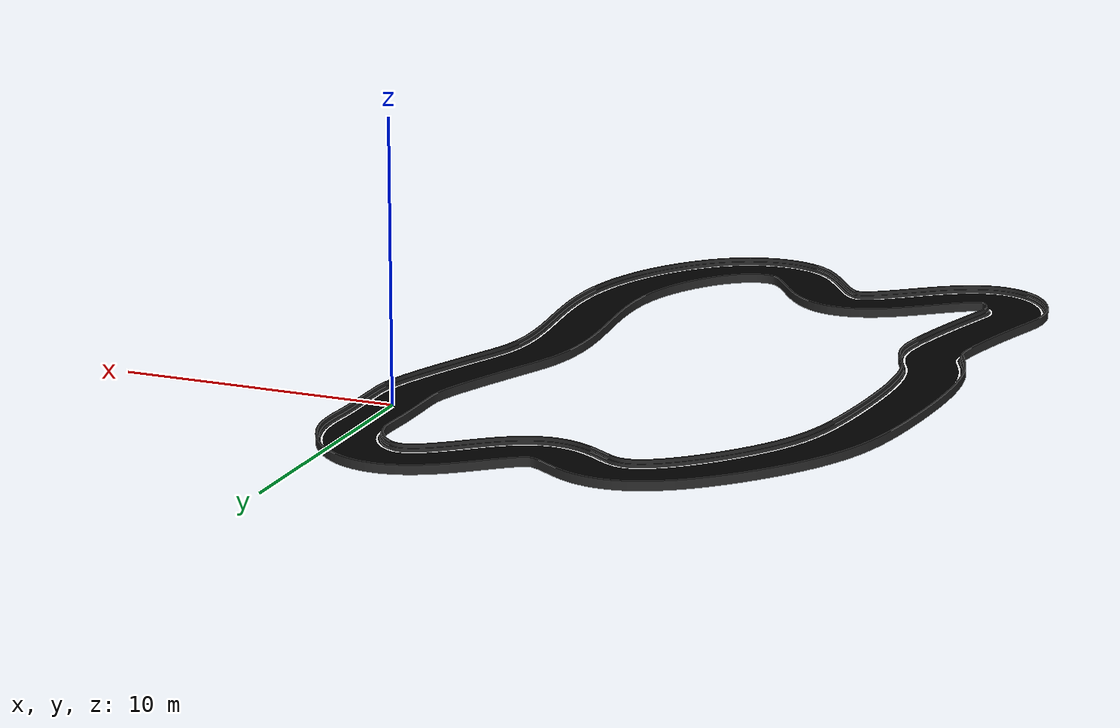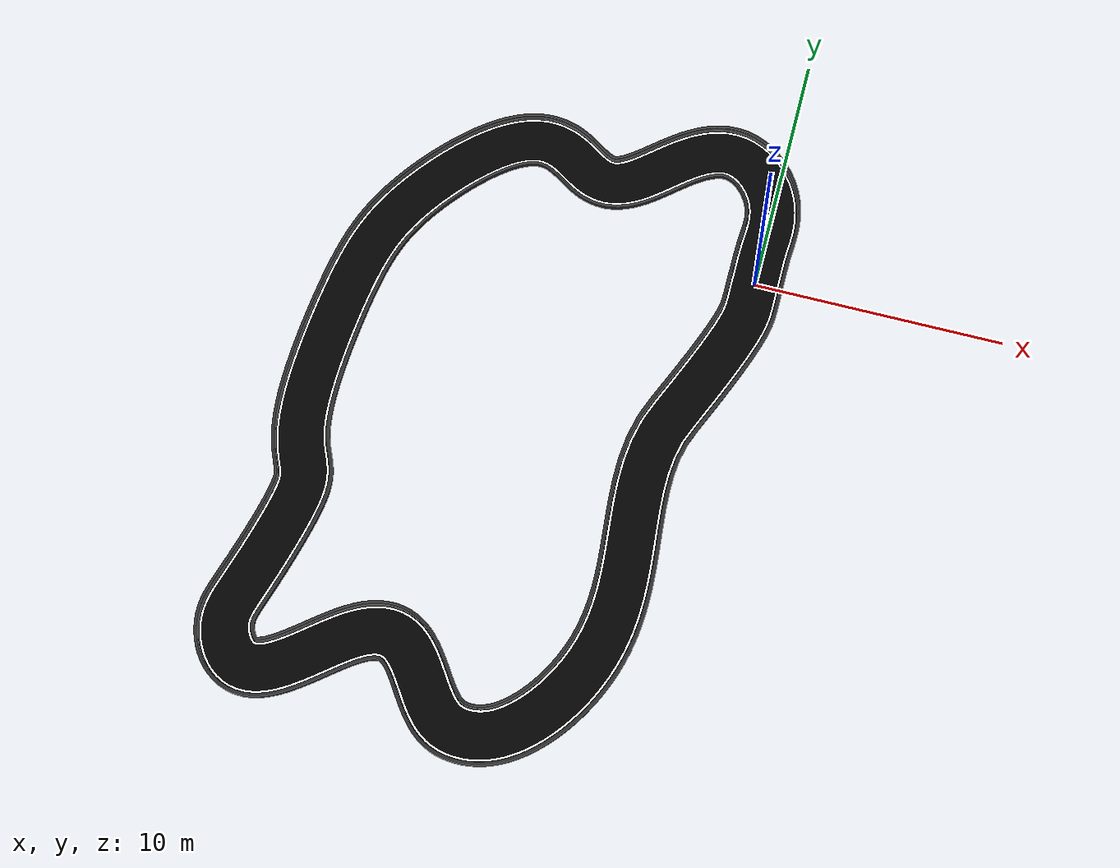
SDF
<?xml version="1.0" ?>
<sdf version="1.6">
  <model name="track">
    <link name="link">
      <collision name="collision">
        <geometry>
			<mesh>
			  <scale>1 1 1</scale>
			  <uri>moldel://racetrack/meshes/track.stl</uri>
			</mesh>
		</geometry>
		<surface>
				<friction>
					<ode>
					  <mu>1</mu>
					  <mu2>1</mu2>
					</ode>
				</friction>
			</surface>
      </collision>
      <visual name="visual">
        <geometry>
          <mesh>
		    <scale>1 1 1</scale>
            <uri>moldel://racetrack/meshes/track.dae</uri>
          </mesh>
        </geometry>
      </visual>
    </link>
  </model>
</sdf>
